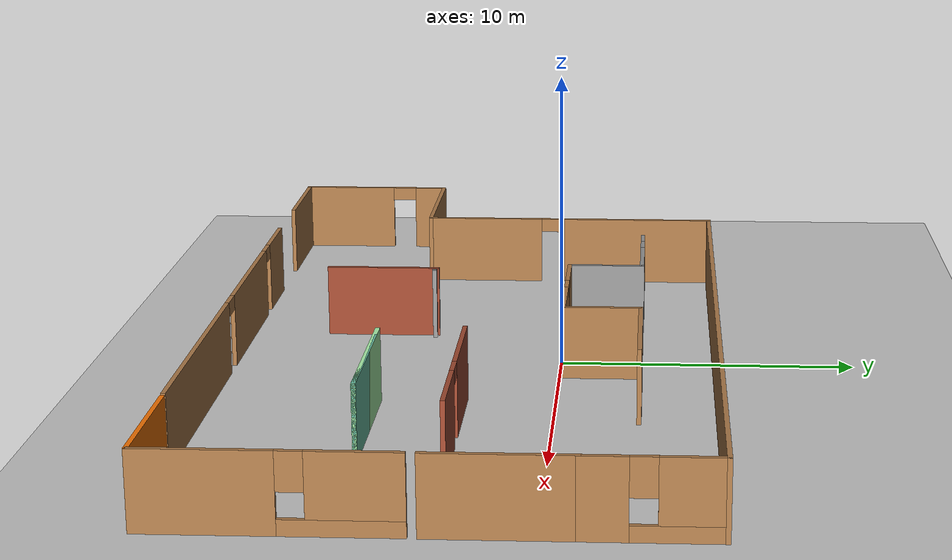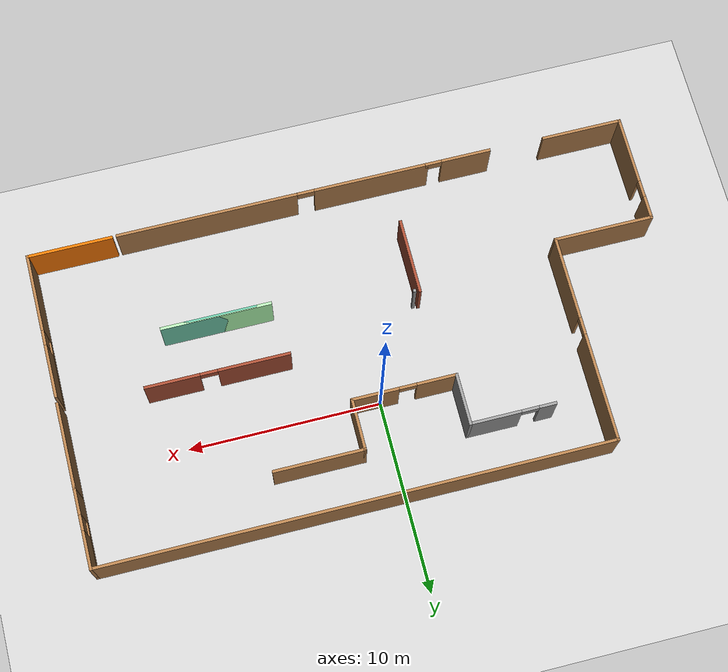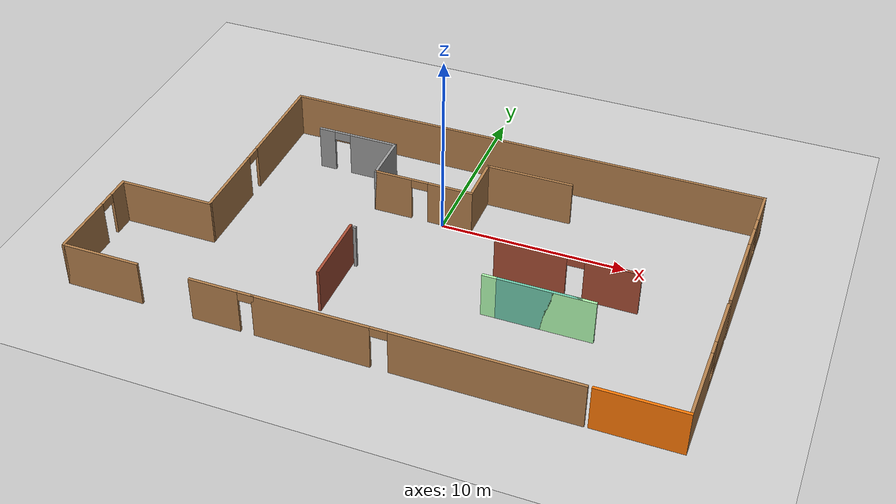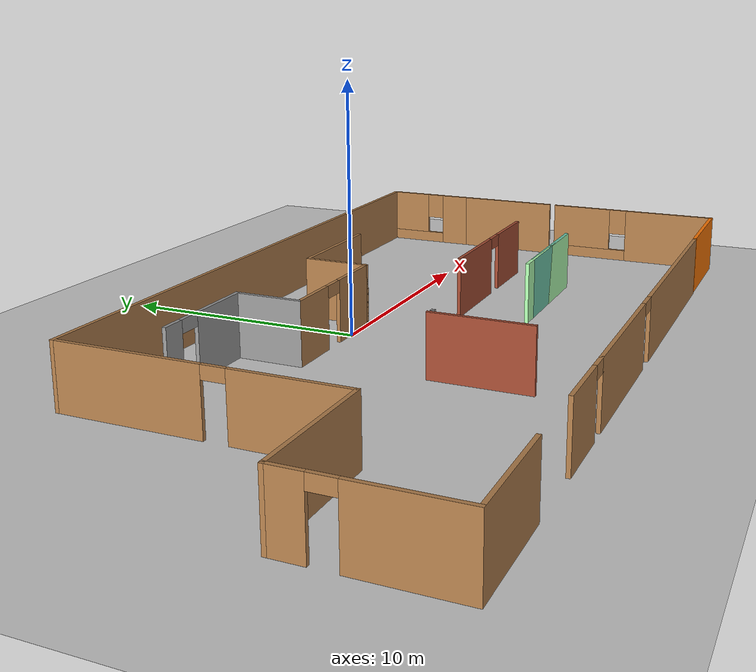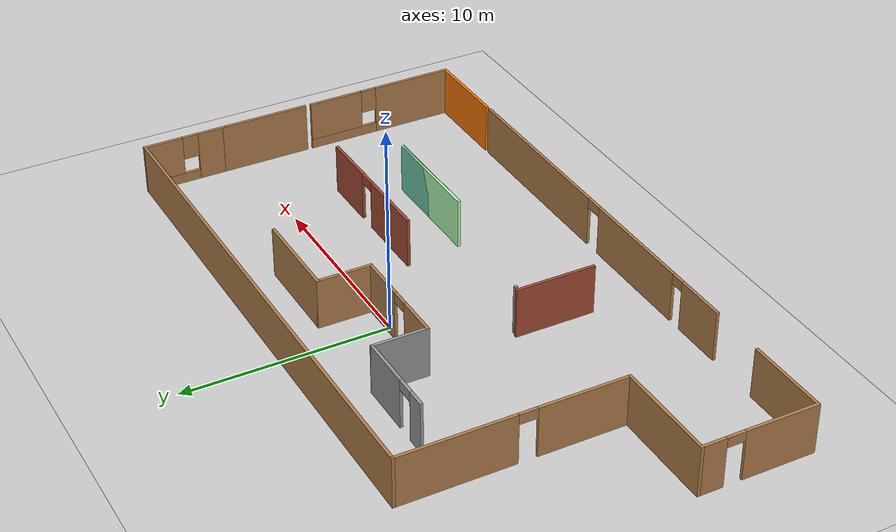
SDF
<sdf version="1.6">
 <world name="default">
  <include><uri>model://sun</uri></include>
  <include><uri>model://ground_plane</uri></include>
  <include>
   <name>floor_plan</name>
   <uri>model://floorplan</uri>
   <pose>0 -3 0 0 0 0</pose>
   <scale>1 1 1</scale>
  </include>
 </world>
</sdf>
